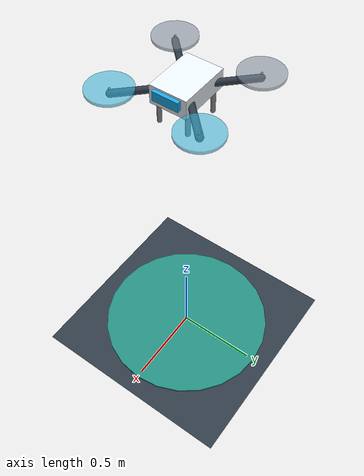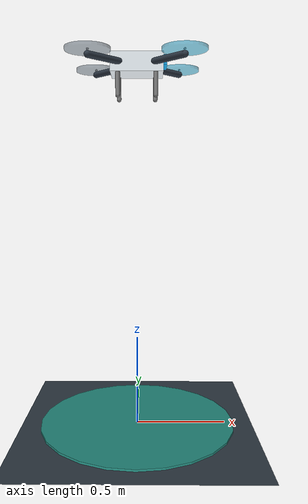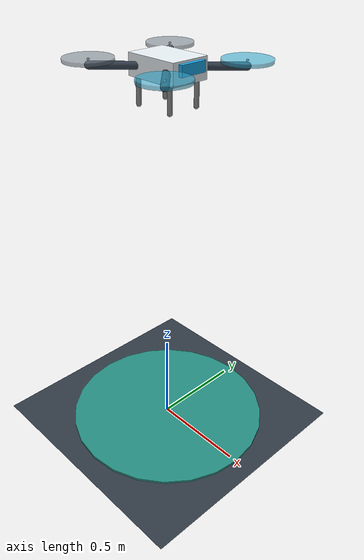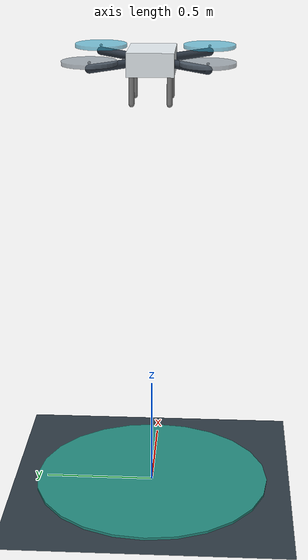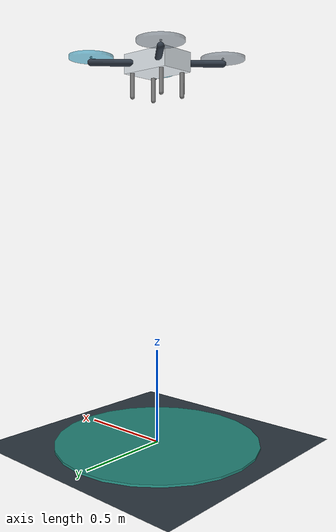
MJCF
<mujoco model="RealityPatch quadrotor test arena">
  <compiler angle="radian"/>
  <option timestep="0.002" integrator="implicitfast" gravity="0 0 -9.81"/>
  <visual><global azimuth="135" elevation="-20"/><map znear="0.01" zfar="100"/>
    <headlight ambient="0.45 0.45 0.45" diffuse="0.7 0.7 0.7"/>
  </visual>
  <asset>
    <texture name="sky" type="skybox" builtin="gradient" rgb1="0.18 0.27 0.39"
             rgb2="0.55 0.66 0.74" width="512" height="3072"/>
    <texture name="floor_grid" type="2d" builtin="checker" rgb1="0.16 0.20 0.24"
             rgb2="0.21 0.26 0.30" width="512" height="512"/>
    <material name="floor" texture="floor_grid" texrepeat="20 20" reflectance="0.1"/>
  </asset>
  <default>
    <geom friction="0.8 0.005 0.001" solref="0.015 1" solimp="0.9 0.95 0.001"/>
    <motor ctrllimited="true" ctrlrange="0 6"/>
  </default>
  <worldbody>
    <light pos="0 -3 7" dir="0 0 -1" diffuse="0.8 0.8 0.8"/>
    <light pos="3 3 6" dir="-0.4 -0.4 -1" diffuse="0.5 0.5 0.5"/>
    <geom name="ground" type="plane" size="20 20 0.1" material="floor"/>
    <geom name="landing_pad" type="cylinder" size="0.55 0.006" pos="0 0 0.006"
          rgba="0.14 0.55 0.50 1" contype="0" conaffinity="0"/>
    <!-- Nominal course marks are visible only for the showcase probe. -->
    <geom name="course_outbound_pad" type="cylinder" size="0.48 0.006" pos="4 0 0.006"
          rgba="0.12 0.65 0.82 0" contype="0" conaffinity="0"/>
    <geom name="course_turn_pad" type="cylinder" size="0.48 0.006" pos="4 1.6 0.006"
          rgba="0.96 0.68 0.2 0" contype="0" conaffinity="0"/>
    <geom name="course_outbound_path" type="box" size="2 0.025 0.004" pos="2 0 0.015"
          rgba="0.15 0.7 0.85 0" contype="0" conaffinity="0"/>
    <geom name="course_cross_path" type="box" size="0.025 0.8 0.004" pos="4 0.8 0.015"
          rgba="0.96 0.68 0.2 0" contype="0" conaffinity="0"/>
    <geom name="course_return_path" type="box" size="2.16 0.018 0.004" pos="2 0.8 0.016"
          rgba="0.45 0.83 0.65 0" contype="0" conaffinity="0"/>
    <geom name="course_distance_1" type="box" size="0.018 0.18 0.004" pos="1 0 0.02"
          rgba="0.8 0.86 0.9 0" contype="0" conaffinity="0"/>
    <geom name="course_distance_2" type="box" size="0.018 0.18 0.004" pos="2 0 0.02"
          rgba="0.8 0.86 0.9 0" contype="0" conaffinity="0"/>
    <geom name="course_distance_3" type="box" size="0.018 0.18 0.004" pos="3 0 0.02"
          rgba="0.8 0.86 0.9 0" contype="0" conaffinity="0"/>
    <camera name="overview" pos="3.7 -4 3" xyaxes="0.8 0.6 0 -0.19 0.25 0.95" fovy="38"/>
    <camera name="side" pos="0 -4 2.0" xyaxes="1 0 0 0 0.24 0.971" fovy="40"/>
    <body name="drone" pos="0 0 2" simple="false">
      <freejoint name="drone_free"/>
      <inertial pos="0 0 0" mass="1.2" diaginertia="0.022 0.022 0.042"/>
      <geom name="fuselage" type="box" size="0.14 0.10 0.05" rgba="0.9 0.93 0.95 1"/>
      <geom name="nose" type="box" pos="0.14 0 0.015" size="0.02 0.07 0.025"
            rgba="0.1 0.65 0.9 1" contype="0" conaffinity="0"/>
      <geom name="arm_0" type="capsule" fromto="0 0 0 0.24 0.24 0" size="0.018" rgba="0.18 0.22 0.27 1"/>
      <geom name="arm_1" type="capsule" fromto="0 0 0 0.24 -0.24 0" size="0.018" rgba="0.18 0.22 0.27 1"/>
      <geom name="arm_2" type="capsule" fromto="0 0 0 -0.24 -0.24 0" size="0.018" rgba="0.18 0.22 0.27 1"/>
      <geom name="arm_3" type="capsule" fromto="0 0 0 -0.24 0.24 0" size="0.018" rgba="0.18 0.22 0.27 1"/>
      <geom name="rotor_0" type="cylinder" pos="0.24 0.24 0.025" size="0.115 0.008" rgba="0.18 0.65 0.8 0.6"/>
      <geom name="rotor_1" type="cylinder" pos="0.24 -0.24 0.025" size="0.115 0.008" rgba="0.18 0.65 0.8 0.6"/>
      <geom name="rotor_2" type="cylinder" pos="-0.24 -0.24 0.025" size="0.115 0.008" rgba="0.45 0.5 0.55 0.6"/>
      <geom name="rotor_3" type="cylinder" pos="-0.24 0.24 0.025" size="0.115 0.008" rgba="0.45 0.5 0.55 0.6"/>
      <geom name="leg_0" type="capsule" fromto="0.1 0.08 -0.04 0.1 0.08 -0.17" size="0.012"/>
      <geom name="leg_1" type="capsule" fromto="0.1 -0.08 -0.04 0.1 -0.08 -0.17" size="0.012"/>
      <geom name="leg_2" type="capsule" fromto="-0.1 -0.08 -0.04 -0.1 -0.08 -0.17" size="0.012"/>
      <geom name="leg_3" type="capsule" fromto="-0.1 0.08 -0.04 -0.1 0.08 -0.17" size="0.012"/>
      <geom name="payload_visual" type="box" pos="0 0 -0.08" size="0.09 0.075 0.035"
            rgba="0.95 0.55 0.1 0" contype="0" conaffinity="0"/>
      <site name="rotor_site_0" pos="0.24 0.24 0.025" size="0.006"/>
      <site name="rotor_site_1" pos="0.24 -0.24 0.025" size="0.006"/>
      <site name="rotor_site_2" pos="-0.24 -0.24 0.025" size="0.006"/>
      <site name="rotor_site_3" pos="-0.24 0.24 0.025" size="0.006"/>
      <site name="imu" pos="0 0 0" size="0.005"/>
      <camera name="chase" mode="trackcom" pos="-1.4 -2.1 0.9" xyaxes="0.832 -0.554 0 0.187 0.281 0.941" fovy="32"/>
    </body>
  </worldbody>
  <actuator>
    <motor name="rotor_motor_0" site="rotor_site_0" gear="0 0 1 0 0 0.018"/>
    <motor name="rotor_motor_1" site="rotor_site_1" gear="0 0 1 0 0 -0.018"/>
    <motor name="rotor_motor_2" site="rotor_site_2" gear="0 0 1 0 0 0.018"/>
    <motor name="rotor_motor_3" site="rotor_site_3" gear="0 0 1 0 0 -0.018"/>
  </actuator>
  <sensor>
    <gyro name="angular_velocity" site="imu"/>
    <accelerometer name="specific_force" site="imu"/>
  </sensor>
</mujoco>
